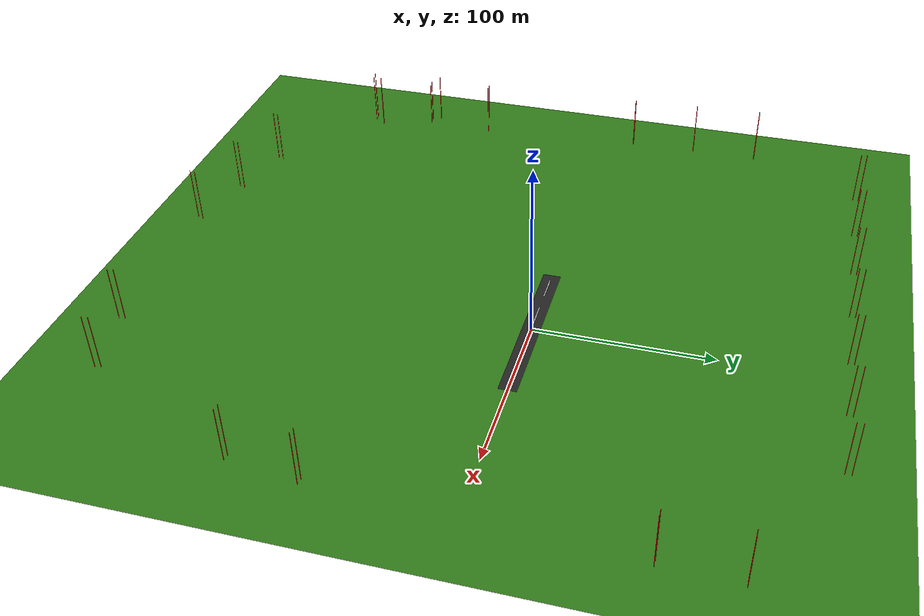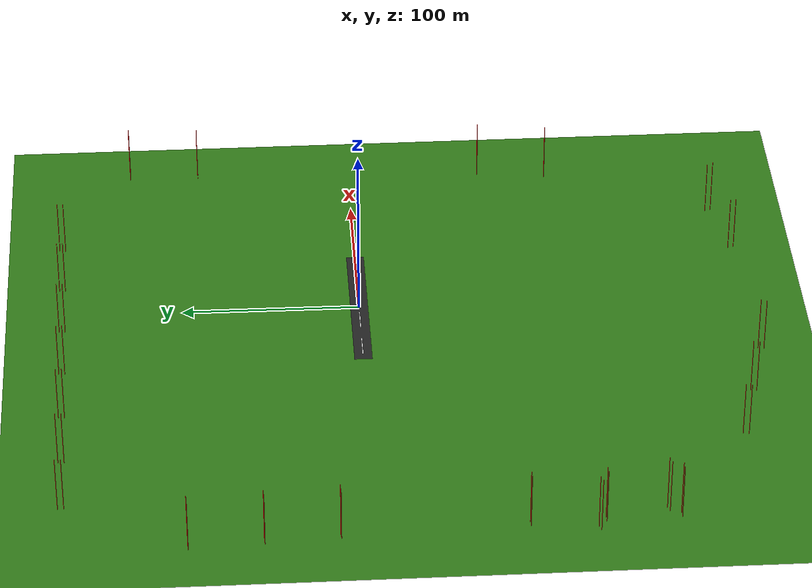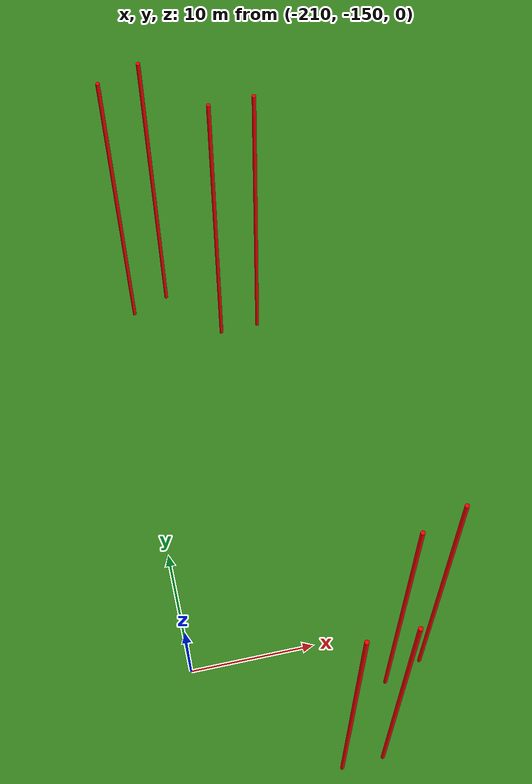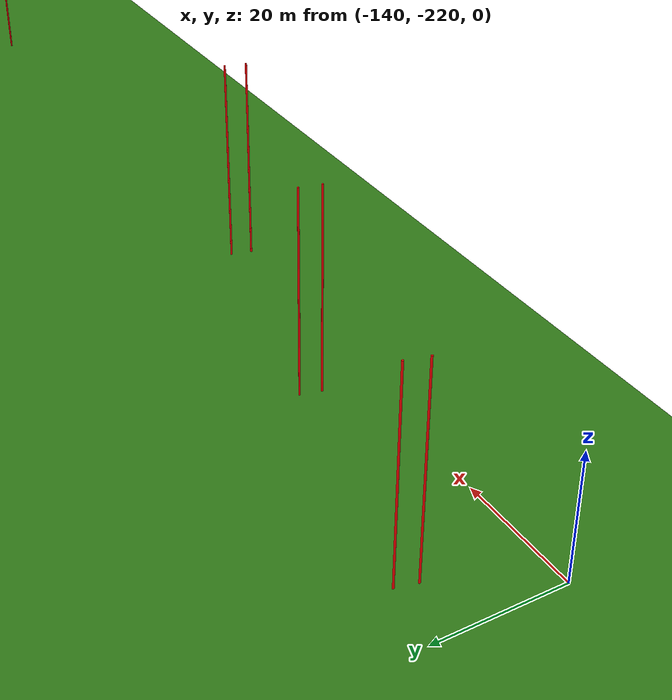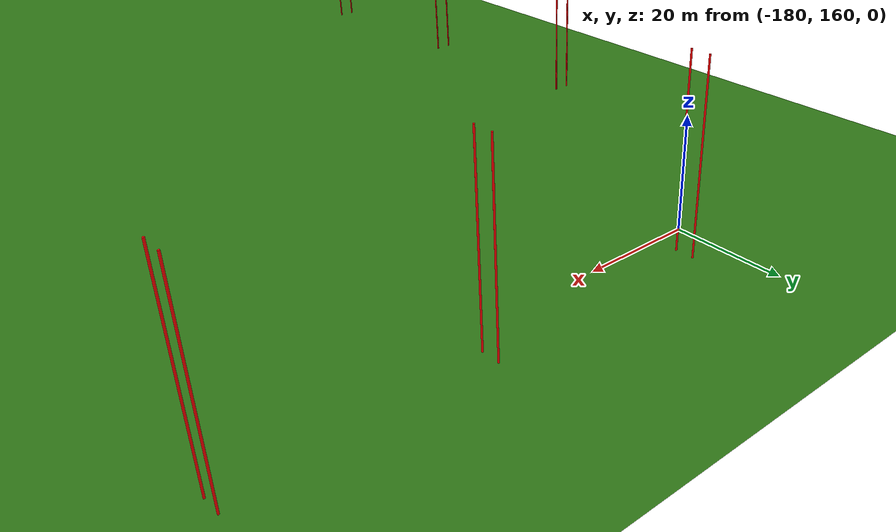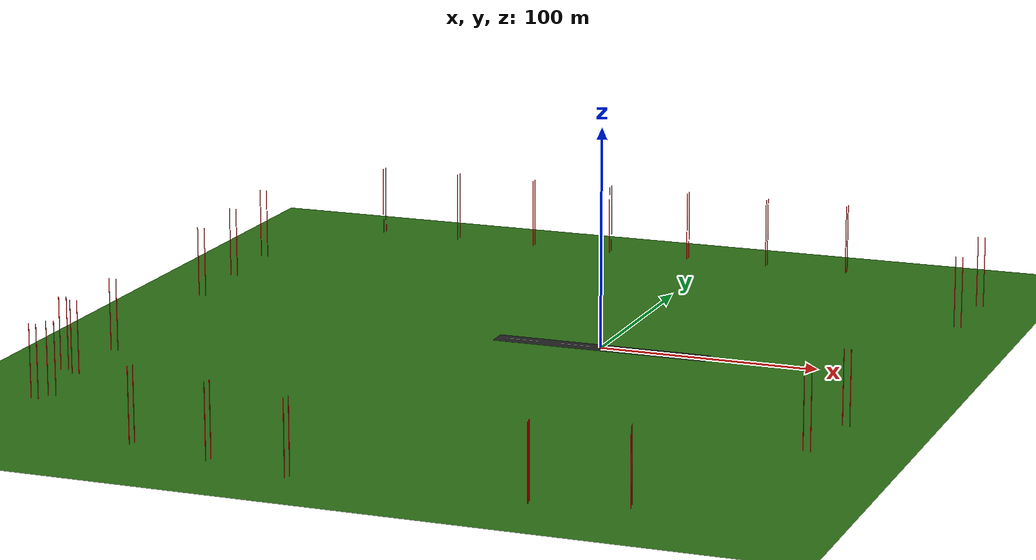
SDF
<?xml version="1.0" ?>
<sdf version="1.9">
  <world name="test">

    <atmosphere type="adiabatic"/>
    <magnetic_field>6.0e-06 2.3e-05 -4.2e-05</magnetic_field>

    <spherical_coordinates>
      <surface_model>EARTH_WGS84</surface_model>
      <world_frame_orientation>ENU</world_frame_orientation>
      <latitude_deg>41.100799</latitude_deg>
      <longitude_deg>28.551562</longitude_deg>
      <elevation>488.0</elevation>
      <heading_deg>0</heading_deg>
    </spherical_coordinates>

    <plugin filename="gz-sim-sensors-system"
            name="gz::sim::systems::Sensors">
      <render_engine>ogre2</render_engine>
    </plugin>
    <plugin filename="gz-sim-imu-system"
            name="gz::sim::systems::Imu"/>
    <plugin filename="gz-sim-air-pressure-system"
            name="gz::sim::systems::AirPressure"/>
    <plugin filename="gz-sim-navsat-system"
            name="gz::sim::systems::NavSat"/>
    <plugin filename="gz-sim-magnetometer-system"
            name="gz::sim::systems::Magnetometer"/>
    <plugin filename="gz-sim-air-speed-system"
            name="gz::sim::systems::AirSpeed"/>

    <!-- Fizik motoru -->
    <physics name="1ms" type="ignored">
      <max_step_size>0.001</max_step_size>
      <real_time_factor>1.0</real_time_factor>
    </physics>

    <!-- Gerekli eklentiler (Gazebo Sim 8 zorunlu) -->
    <plugin filename="gz-sim-physics-system"
            name="gz::sim::systems::Physics"/>
    <plugin filename="gz-sim-user-commands-system"
            name="gz::sim::systems::UserCommands"/>
    <plugin filename="gz-sim-scene-broadcaster-system"
            name="gz::sim::systems::SceneBroadcaster"/>

    <!-- Işık -->
    <light name="sun" type="directional">
      <cast_shadows>true</cast_shadows>
      <pose>0 0 10 0 0 0</pose>
      <diffuse>0.8 0.8 0.8 1</diffuse>
      <specular>0.2 0.2 0.2 1</specular>
      <direction>-0.5 0.1 -0.9</direction>
    </light>

    <!-- Zemin -->
    <model name="ground_plane">
      <static>true</static>
      <link name="link">
        <collision name="collision">
          <geometry><plane><normal>0 0 1</normal><size>500 500</size></plane></geometry>
        </collision>
        <visual name="visual">
          <geometry><plane><normal>0 0 1</normal><size>500 500</size></plane></geometry>
          <material>
            <ambient>0.2 0.5 0.1 1</ambient>
            <diffuse>0.2 0.5 0.1 1</diffuse>
          </material>
        </visual>
      </link>
    </model>

    <!--   KALKIŞ/İNİŞ PİSTİ  -->

    <!-- Pist gövdesi: 100m x 10m, merkez orijinde -->
    <model name="runway_base">
      <static>true</static>
      <pose>0 0 0.01 0 0 0</pose>
      <link name="link">
        <visual name="asphalt">
          <geometry>
            <box><size>100 10 0.01</size></box>
          </geometry>
          <material>
            <ambient>0.15 0.15 0.15 1</ambient>
            <diffuse>0.15 0.15 0.15 1</diffuse>
          </material>
        </visual>
        <collision name="col">
          <geometry><box><size>100 10 0.01</size></box></geometry>
        </collision>
      </link>
    </model>

    <!-- Merkez çizgisi (beyaz, kesik kesik için 4 parça) -->
    <!-- Aralarına 10m boşluk, her parça 15*0,5m -->
    <model name="cl_0"><static>true</static><pose>-37.5 0 0.01 0 0 0</pose>
      <link name="l"><visual name="v"><geometry><box><size>15 0.5 0.02</size></box></geometry>
        <material><ambient>1 1 1 1</ambient><diffuse>1 1 1 1</diffuse></material>
      </visual></link></model>

    <model name="cl_1"><static>true</static><pose>-12.5 0 0.01 0 0 0</pose>
      <link name="l"><visual name="v"><geometry><box><size>15 0.5 0.02</size></box></geometry>
        <material><ambient>1 1 1 1</ambient><diffuse>1 1 1 1</diffuse></material>
      </visual></link></model>

    <model name="cl_2"><static>true</static><pose>12.5 0 0.01 0 0 0</pose>
      <link name="l"><visual name="v"><geometry><box><size>15 0.5 0.02</size></box></geometry>
        <material><ambient>1 1 1 1</ambient><diffuse>1 1 1 1</diffuse></material>
      </visual></link></model>

    <model name="cl_3"><static>true</static><pose>37.5 0 0.01 0 0 0</pose>
      <link name="l"><visual name="v"><geometry><box><size>15 0.5 0.02</size></box></geometry>
        <material><ambient>1 1 1 1</ambient><diffuse>1 1 1 1</diffuse></material>
      </visual></link></model>

    <!-- Direkler-->
      <model name="pole_0">
      <static>true</static>
      <pose>-174.57 167.51 0 0 0 0</pose>
      <link name="link">
        <visual name="v">
          <pose>0 0 16.5 0 0 0</pose>
          <geometry><cylinder><radius>0.15</radius><length>33.0</length></cylinder></geometry>
          <material><ambient>1 0 0 1</ambient><diffuse>1 0 0 1</diffuse></material>
        </visual>
      </link>
    </model>
    <model name="pole_1">
      <static>true</static>
      <pose>-174.53 164.21 0 0 0 0</pose>
      <link name="link">
        <visual name="v">
          <pose>0 0 16.5 0 0 0</pose>
          <geometry><cylinder><radius>0.15</radius><length>33.0</length></cylinder></geometry>
          <material><ambient>1 0 0 1</ambient><diffuse>1 0 0 1</diffuse></material>
        </visual>
      </link>
    </model>
    <model name="pole_2">
      <static>true</static>
      <pose>-134.57 167.99 0 0 0 0</pose>
      <link name="link">
        <visual name="v">
          <pose>0 0 16.5 0 0 0</pose>
          <geometry><cylinder><radius>0.15</radius><length>33.0</length></cylinder></geometry>
          <material><ambient>1 0 0 1</ambient><diffuse>1 0 0 1</diffuse></material>
        </visual>
      </link>
    </model>
    <model name="pole_3">
      <static>true</static>
      <pose>-134.53 164.69 0 0 0 0</pose>
      <link name="link">
        <visual name="v">
          <pose>0 0 16.5 0 0 0</pose>
          <geometry><cylinder><radius>0.15</radius><length>33.0</length></cylinder></geometry>
          <material><ambient>1 0 0 1</ambient><diffuse>1 0 0 1</diffuse></material>
        </visual>
      </link>
    </model>
    <model name="pole_4">
      <static>true</static>
      <pose>-94.57 168.46 0 0 0 0</pose>
      <link name="link">
        <visual name="v">
          <pose>0 0 16.5 0 0 0</pose>
          <geometry><cylinder><radius>0.15</radius><length>33.0</length></cylinder></geometry>
          <material><ambient>1 0 0 1</ambient><diffuse>1 0 0 1</diffuse></material>
        </visual>
      </link>
    </model>
    <model name="pole_5">
      <static>true</static>
      <pose>-94.53 165.16 0 0 0 0</pose>
      <link name="link">
        <visual name="v">
          <pose>0 0 16.5 0 0 0</pose>
          <geometry><cylinder><radius>0.15</radius><length>33.0</length></cylinder></geometry>
          <material><ambient>1 0 0 1</ambient><diffuse>1 0 0 1</diffuse></material>
        </visual>
      </link>
    </model>
    <model name="pole_6">
      <static>true</static>
      <pose>-54.58 168.93 0 0 0 0</pose>
      <link name="link">
        <visual name="v">
          <pose>0 0 16.5 0 0 0</pose>
          <geometry><cylinder><radius>0.15</radius><length>33.0</length></cylinder></geometry>
          <material><ambient>1 0 0 1</ambient><diffuse>1 0 0 1</diffuse></material>
        </visual>
      </link>
    </model>
    <model name="pole_7">
      <static>true</static>
      <pose>-54.54 165.63 0 0 0 0</pose>
      <link name="link">
        <visual name="v">
          <pose>0 0 16.5 0 0 0</pose>
          <geometry><cylinder><radius>0.15</radius><length>33.0</length></cylinder></geometry>
          <material><ambient>1 0 0 1</ambient><diffuse>1 0 0 1</diffuse></material>
        </visual>
      </link>
    </model>
    <model name="pole_8">
      <static>true</static>
      <pose>-14.58 169.41 0 0 0 0</pose>
      <link name="link">
        <visual name="v">
          <pose>0 0 16.5 0 0 0</pose>
          <geometry><cylinder><radius>0.15</radius><length>33.0</length></cylinder></geometry>
          <material><ambient>1 0 0 1</ambient><diffuse>1 0 0 1</diffuse></material>
        </visual>
      </link>
    </model>
    <model name="pole_9">
      <static>true</static>
      <pose>-14.54 166.11 0 0 0 0</pose>
      <link name="link">
        <visual name="v">
          <pose>0 0 16.5 0 0 0</pose>
          <geometry><cylinder><radius>0.15</radius><length>33.0</length></cylinder></geometry>
          <material><ambient>1 0 0 1</ambient><diffuse>1 0 0 1</diffuse></material>
        </visual>
      </link>
    </model>
    <model name="pole_10">
      <static>true</static>
      <pose>25.42 169.88 0 0 0 0</pose>
      <link name="link">
        <visual name="v">
          <pose>0 0 16.5 0 0 0</pose>
          <geometry><cylinder><radius>0.15</radius><length>33.0</length></cylinder></geometry>
          <material><ambient>1 0 0 1</ambient><diffuse>1 0 0 1</diffuse></material>
        </visual>
      </link>
    </model>
    <model name="pole_11">
      <static>true</static>
      <pose>25.46 166.58 0 0 0 0</pose>
      <link name="link">
        <visual name="v">
          <pose>0 0 16.5 0 0 0</pose>
          <geometry><cylinder><radius>0.15</radius><length>33.0</length></cylinder></geometry>
          <material><ambient>1 0 0 1</ambient><diffuse>1 0 0 1</diffuse></material>
        </visual>
      </link>
    </model>
    <model name="pole_12">
      <static>true</static>
      <pose>65.41 170.36 0 0 0 0</pose>
      <link name="link">
        <visual name="v">
          <pose>0 0 16.5 0 0 0</pose>
          <geometry><cylinder><radius>0.15</radius><length>33.0</length></cylinder></geometry>
          <material><ambient>1 0 0 1</ambient><diffuse>1 0 0 1</diffuse></material>
        </visual>
      </link>
    </model>
    <model name="pole_13">
      <static>true</static>
      <pose>65.45 167.06 0 0 0 0</pose>
      <link name="link">
        <visual name="v">
          <pose>0 0 16.5 0 0 0</pose>
          <geometry><cylinder><radius>0.15</radius><length>33.0</length></cylinder></geometry>
          <material><ambient>1 0 0 1</ambient><diffuse>1 0 0 1</diffuse></material>
        </visual>
      </link>
    </model>
    <model name="pole_14">
      <static>true</static>
      <pose>142.43 129.59 0 0 0 0</pose>
      <link name="link">
        <visual name="v">
          <pose>0 0 16.5 0 0 0</pose>
          <geometry><cylinder><radius>0.15</radius><length>33.0</length></cylinder></geometry>
          <material><ambient>1 0 0 1</ambient><diffuse>1 0 0 1</diffuse></material>
        </visual>
      </link>
    </model>
    <model name="pole_15">
      <static>true</static>
      <pose>139.13 129.64 0 0 0 0</pose>
      <link name="link">
        <visual name="v">
          <pose>0 0 16.5 0 0 0</pose>
          <geometry><cylinder><radius>0.15</radius><length>33.0</length></cylinder></geometry>
          <material><ambient>1 0 0 1</ambient><diffuse>1 0 0 1</diffuse></material>
        </visual>
      </link>
    </model>
    <model name="pole_16">
      <static>true</static>
      <pose>141.78 89.59 0 0 0 0</pose>
      <link name="link">
        <visual name="v">
          <pose>0 0 16.5 0 0 0</pose>
          <geometry><cylinder><radius>0.15</radius><length>33.0</length></cylinder></geometry>
          <material><ambient>1 0 0 1</ambient><diffuse>1 0 0 1</diffuse></material>
        </visual>
      </link>
    </model>
    <model name="pole_17">
      <static>true</static>
      <pose>138.48 89.64 0 0 0 0</pose>
      <link name="link">
        <visual name="v">
          <pose>0 0 16.5 0 0 0</pose>
          <geometry><cylinder><radius>0.15</radius><length>33.0</length></cylinder></geometry>
          <material><ambient>1 0 0 1</ambient><diffuse>1 0 0 1</diffuse></material>
        </visual>
      </link>
    </model>
    <model name="pole_18">
      <static>true</static>
      <pose>136.29 -77.30 0 0 0 0</pose>
      <link name="link">
        <visual name="v">
          <pose>0 0 16.5 0 0 0</pose>
          <geometry><cylinder><radius>0.15</radius><length>33.0</length></cylinder></geometry>
          <material><ambient>1 0 0 1</ambient><diffuse>1 0 0 1</diffuse></material>
        </visual>
      </link>
    </model>
    <model name="pole_19">
      <static>true</static>
      <pose>133.02 -76.86 0 0 0 0</pose>
      <link name="link">
        <visual name="v">
          <pose>0 0 16.5 0 0 0</pose>
          <geometry><cylinder><radius>0.15</radius><length>33.0</length></cylinder></geometry>
          <material><ambient>1 0 0 1</ambient><diffuse>1 0 0 1</diffuse></material>
        </visual>
      </link>
    </model>
    <model name="pole_20">
      <static>true</static>
      <pose>130.99 -116.95 0 0 0 0</pose>
      <link name="link">
        <visual name="v">
          <pose>0 0 16.5 0 0 0</pose>
          <geometry><cylinder><radius>0.15</radius><length>33.0</length></cylinder></geometry>
          <material><ambient>1 0 0 1</ambient><diffuse>1 0 0 1</diffuse></material>
        </visual>
      </link>
    </model>
    <model name="pole_21">
      <static>true</static>
      <pose>127.72 -116.51 0 0 0 0</pose>
      <link name="link">
        <visual name="v">
          <pose>0 0 16.5 0 0 0</pose>
          <geometry><cylinder><radius>0.15</radius><length>33.0</length></cylinder></geometry>
          <material><ambient>1 0 0 1</ambient><diffuse>1 0 0 1</diffuse></material>
        </visual>
      </link>
    </model>
    <model name="pole_22">
      <static>true</static>
      <pose>86.89 -211.41 0 0 0 0</pose>
      <link name="link">
        <visual name="v">
          <pose>0 0 16.5 0 0 0</pose>
          <geometry><cylinder><radius>0.15</radius><length>33.0</length></cylinder></geometry>
          <material><ambient>1 0 0 1</ambient><diffuse>1 0 0 1</diffuse></material>
        </visual>
      </link>
    </model>
    <model name="pole_23">
      <static>true</static>
      <pose>86.20 -208.19 0 0 0 0</pose>
      <link name="link">
        <visual name="v">
          <pose>0 0 16.5 0 0 0</pose>
          <geometry><cylinder><radius>0.15</radius><length>33.0</length></cylinder></geometry>
          <material><ambient>1 0 0 1</ambient><diffuse>1 0 0 1</diffuse></material>
        </visual>
      </link>
    </model>
    <model name="pole_24">
      <static>true</static>
      <pose>47.79 -219.85 0 0 0 0</pose>
      <link name="link">
        <visual name="v">
          <pose>0 0 16.5 0 0 0</pose>
          <geometry><cylinder><radius>0.15</radius><length>33.0</length></cylinder></geometry>
          <material><ambient>1 0 0 1</ambient><diffuse>1 0 0 1</diffuse></material>
        </visual>
      </link>
    </model>
    <model name="pole_25">
      <static>true</static>
      <pose>47.09 -216.62 0 0 0 0</pose>
      <link name="link">
        <visual name="v">
          <pose>0 0 16.5 0 0 0</pose>
          <geometry><cylinder><radius>0.15</radius><length>33.0</length></cylinder></geometry>
          <material><ambient>1 0 0 1</ambient><diffuse>1 0 0 1</diffuse></material>
        </visual>
      </link>
    </model>
    <model name="pole_26">
      <static>true</static>
      <pose>-53.33 -223.63 0 0 0 0</pose>
      <link name="link">
        <visual name="v">
          <pose>0 0 16.5 0 0 0</pose>
          <geometry><cylinder><radius>0.15</radius><length>33.0</length></cylinder></geometry>
          <material><ambient>1 0 0 1</ambient><diffuse>1 0 0 1</diffuse></material>
        </visual>
      </link>
    </model>
    <model name="pole_27">
      <static>true</static>
      <pose>-52.55 -220.43 0 0 0 0</pose>
      <link name="link">
        <visual name="v">
          <pose>0 0 16.5 0 0 0</pose>
          <geometry><cylinder><radius>0.15</radius><length>33.0</length></cylinder></geometry>
          <material><ambient>1 0 0 1</ambient><diffuse>1 0 0 1</diffuse></material>
        </visual>
      </link>
    </model>
    <model name="pole_28">
      <static>true</static>
      <pose>-92.19 -214.17 0 0 0 0</pose>
      <link name="link">
        <visual name="v">
          <pose>0 0 16.5 0 0 0</pose>
          <geometry><cylinder><radius>0.15</radius><length>33.0</length></cylinder></geometry>
          <material><ambient>1 0 0 1</ambient><diffuse>1 0 0 1</diffuse></material>
        </visual>
      </link>
    </model>
    <model name="pole_29">
      <static>true</static>
      <pose>-91.41 -210.96 0 0 0 0</pose>
      <link name="link">
        <visual name="v">
          <pose>0 0 16.5 0 0 0</pose>
          <geometry><cylinder><radius>0.15</radius><length>33.0</length></cylinder></geometry>
          <material><ambient>1 0 0 1</ambient><diffuse>1 0 0 1</diffuse></material>
        </visual>
      </link>
    </model>
    <model name="pole_30">
      <static>true</static>
      <pose>-131.06 -204.70 0 0 0 0</pose>
      <link name="link">
        <visual name="v">
          <pose>0 0 16.5 0 0 0</pose>
          <geometry><cylinder><radius>0.15</radius><length>33.0</length></cylinder></geometry>
          <material><ambient>1 0 0 1</ambient><diffuse>1 0 0 1</diffuse></material>
        </visual>
      </link>
    </model>
    <model name="pole_31">
      <static>true</static>
      <pose>-130.27 -201.49 0 0 0 0</pose>
      <link name="link">
        <visual name="v">
          <pose>0 0 16.5 0 0 0</pose>
          <geometry><cylinder><radius>0.15</radius><length>33.0</length></cylinder></geometry>
          <material><ambient>1 0 0 1</ambient><diffuse>1 0 0 1</diffuse></material>
        </visual>
      </link>
    </model>
    <model name="pole_32">
      <static>true</static>
      <pose>-199.95 -160.06 0 0 0 0</pose>
      <link name="link">
        <visual name="v">
          <pose>0 0 16.5 0 0 0</pose>
          <geometry><cylinder><radius>0.15</radius><length>33.0</length></cylinder></geometry>
          <material><ambient>1 0 0 1</ambient><diffuse>1 0 0 1</diffuse></material>
        </visual>
      </link>
    </model>
    <model name="pole_33">
      <static>true</static>
      <pose>-196.66 -159.93 0 0 0 0</pose>
      <link name="link">
        <visual name="v">
          <pose>0 0 16.5 0 0 0</pose>
          <geometry><cylinder><radius>0.15</radius><length>33.0</length></cylinder></geometry>
          <material><ambient>1 0 0 1</ambient><diffuse>1 0 0 1</diffuse></material>
        </visual>
      </link>
    </model>
    <model name="pole_34">
      <static>true</static>
      <pose>-201.47 -120.08 0 0 0 0</pose>
      <link name="link">
        <visual name="v">
          <pose>0 0 16.5 0 0 0</pose>
          <geometry><cylinder><radius>0.15</radius><length>33.0</length></cylinder></geometry>
          <material><ambient>1 0 0 1</ambient><diffuse>1 0 0 1</diffuse></material>
        </visual>
      </link>
    </model>
    <model name="pole_35">
      <static>true</static>
      <pose>-198.18 -119.96 0 0 0 0</pose>
      <link name="link">
        <visual name="v">
          <pose>0 0 16.5 0 0 0</pose>
          <geometry><cylinder><radius>0.15</radius><length>33.0</length></cylinder></geometry>
          <material><ambient>1 0 0 1</ambient><diffuse>1 0 0 1</diffuse></material>
        </visual>
      </link>
    </model>
    <model name="pole_36">
      <static>true</static>
      <pose>-202.99 -80.11 0 0 0 0</pose>
      <link name="link">
        <visual name="v">
          <pose>0 0 16.5 0 0 0</pose>
          <geometry><cylinder><radius>0.15</radius><length>33.0</length></cylinder></geometry>
          <material><ambient>1 0 0 1</ambient><diffuse>1 0 0 1</diffuse></material>
        </visual>
      </link>
    </model>
    <model name="pole_37">
      <static>true</static>
      <pose>-199.69 -79.99 0 0 0 0</pose>
      <link name="link">
        <visual name="v">
          <pose>0 0 16.5 0 0 0</pose>
          <geometry><cylinder><radius>0.15</radius><length>33.0</length></cylinder></geometry>
          <material><ambient>1 0 0 1</ambient><diffuse>1 0 0 1</diffuse></material>
        </visual>
      </link>
    </model>
    <model name="pole_38">
      <static>true</static>
      <pose>-207.60 19.36 0 0 0 0</pose>
      <link name="link">
        <visual name="v">
          <pose>0 0 16.5 0 0 0</pose>
          <geometry><cylinder><radius>0.15</radius><length>33.0</length></cylinder></geometry>
          <material><ambient>1 0 0 1</ambient><diffuse>1 0 0 1</diffuse></material>
        </visual>
      </link>
    </model>
    <model name="pole_39">
      <static>true</static>
      <pose>-204.31 19.56 0 0 0 0</pose>
      <link name="link">
        <visual name="v">
          <pose>0 0 16.5 0 0 0</pose>
          <geometry><cylinder><radius>0.15</radius><length>33.0</length></cylinder></geometry>
          <material><ambient>1 0 0 1</ambient><diffuse>1 0 0 1</diffuse></material>
        </visual>
      </link>
    </model>
    <model name="pole_40">
      <static>true</static>
      <pose>-209.95 59.29 0 0 0 0</pose>
      <link name="link">
        <visual name="v">
          <pose>0 0 16.5 0 0 0</pose>
          <geometry><cylinder><radius>0.15</radius><length>33.0</length></cylinder></geometry>
          <material><ambient>1 0 0 1</ambient><diffuse>1 0 0 1</diffuse></material>
        </visual>
      </link>
    </model>
    <model name="pole_41">
      <static>true</static>
      <pose>-206.66 59.49 0 0 0 0</pose>
      <link name="link">
        <visual name="v">
          <pose>0 0 16.5 0 0 0</pose>
          <geometry><cylinder><radius>0.15</radius><length>33.0</length></cylinder></geometry>
          <material><ambient>1 0 0 1</ambient><diffuse>1 0 0 1</diffuse></material>
        </visual>
      </link>
    </model>
    <model name="pole_42">
      <static>true</static>
      <pose>-212.30 99.22 0 0 0 0</pose>
      <link name="link">
        <visual name="v">
          <pose>0 0 16.5 0 0 0</pose>
          <geometry><cylinder><radius>0.15</radius><length>33.0</length></cylinder></geometry>
          <material><ambient>1 0 0 1</ambient><diffuse>1 0 0 1</diffuse></material>
        </visual>
      </link>
    </model>
    <model name="pole_43">
      <static>true</static>
      <pose>-209.01 99.42 0 0 0 0</pose>
      <link name="link">
        <visual name="v">
          <pose>0 0 16.5 0 0 0</pose>
          <geometry><cylinder><radius>0.15</radius><length>33.0</length></cylinder></geometry>
          <material><ambient>1 0 0 1</ambient><diffuse>1 0 0 1</diffuse></material>
        </visual>
      </link>
    </model>
    <model name="pole_44">
      <static>true</static>
      <pose>-194.99 -154.15 0 0 0 0</pose>
      <link name="link">
        <visual name="v">
          <pose>0 0 16.5 0 0 0</pose>
          <geometry><cylinder><radius>0.15</radius><length>33.0</length></cylinder></geometry>
          <material><ambient>1 0 0 1</ambient><diffuse>1 0 0 1</diffuse></material>
        </visual>
      </link>
    </model>
    <model name="pole_45">
      <static>true</static>
      <pose>-191.89 -153.02 0 0 0 0</pose>
      <link name="link">
        <visual name="v">
          <pose>0 0 16.5 0 0 0</pose>
          <geometry><cylinder><radius>0.15</radius><length>33.0</length></cylinder></geometry>
          <material><ambient>1 0 0 1</ambient><diffuse>1 0 0 1</diffuse></material>
        </visual>
      </link>
    </model>
    <model name="pole_46">
      <static>true</static>
      <pose>-208.74 -116.59 0 0 0 0</pose>
      <link name="link">
        <visual name="v">
          <pose>0 0 16.5 0 0 0</pose>
          <geometry><cylinder><radius>0.15</radius><length>33.0</length></cylinder></geometry>
          <material><ambient>1 0 0 1</ambient><diffuse>1 0 0 1</diffuse></material>
        </visual>
      </link>
    </model>
    <model name="pole_47">
      <static>true</static>
      <pose>-205.64 -115.45 0 0 0 0</pose>
      <link name="link">
        <visual name="v">
          <pose>0 0 16.5 0 0 0</pose>
          <geometry><cylinder><radius>0.15</radius><length>33.0</length></cylinder></geometry>
          <material><ambient>1 0 0 1</ambient><diffuse>1 0 0 1</diffuse></material>
        </visual>
      </link>
    </model>
  </world>
</sdf>
